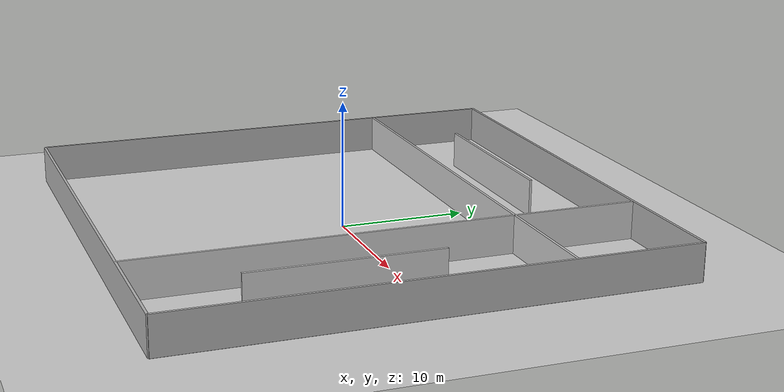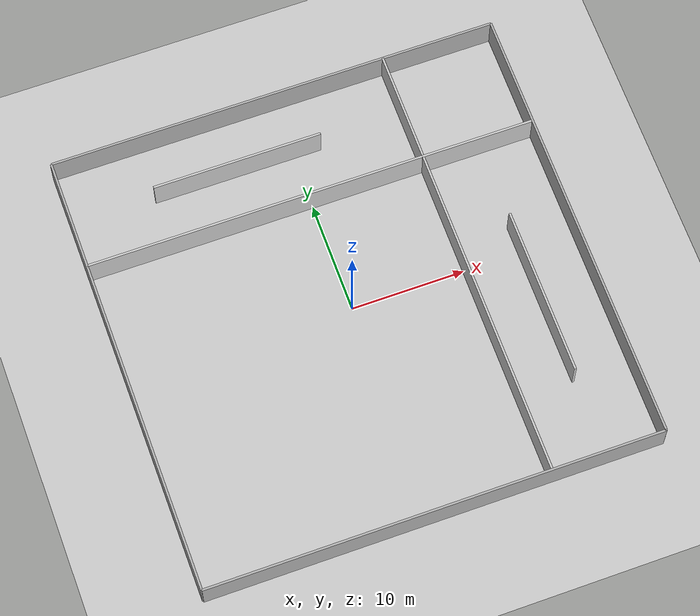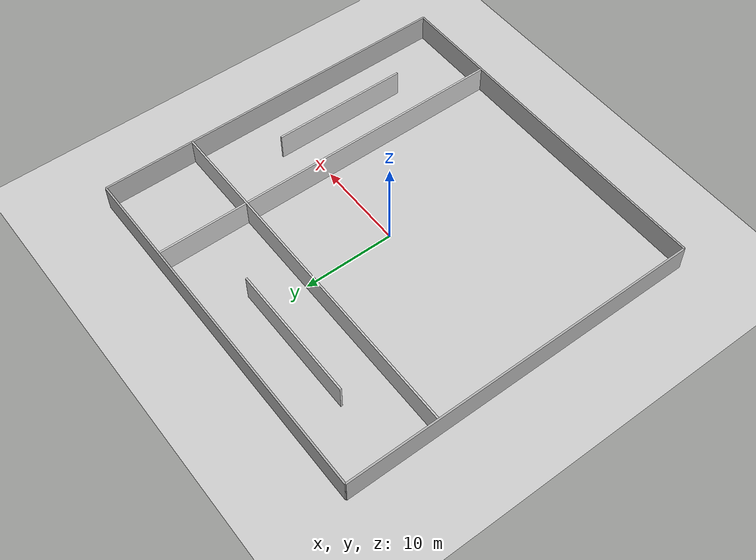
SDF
<?xml version="1.0" encoding="UTF-8"?>
<sdf version="1.9">
  <world name="home">
    <physics type="ode">
      <max_step_size>0.004</max_step_size>
      <real_time_factor>1.0</real_time_factor>
      <real_time_update_rate>250</real_time_update_rate>
    </physics>
    <plugin name="gz::sim::systems::Physics" filename="gz-sim-physics-system"/>
    <plugin name="gz::sim::systems::UserCommands" filename="gz-sim-user-commands-system"/>
    <plugin name="gz::sim::systems::SceneBroadcaster" filename="gz-sim-scene-broadcaster-system"/>
    <plugin name="gz::sim::systems::Contact" filename="gz-sim-contact-system"/>
    <plugin name="gz::sim::systems::Imu" filename="gz-sim-imu-system"/>
    <plugin name="gz::sim::systems::AirPressure" filename="gz-sim-air-pressure-system"/>
    <plugin name="gz::sim::systems::ApplyLinkWrench" filename="gz-sim-apply-link-wrench-system"/>
    <plugin name="gz::sim::systems::Sensors" filename="gz-sim-sensors-system">
      <render_engine>ogre2</render_engine>
    </plugin>
    <gui fullscreen="false">
      <!-- 3D scene -->
      <plugin filename="MinimalScene" name="3D View">
        <gz-gui>
          <title>3D View</title>
          <property type="bool" key="showTitleBar">false</property>
          <property type="string" key="state">docked</property>
        </gz-gui>
        <engine>ogre2</engine>
        <scene>scene</scene>
        <ambient_light>0.4 0.4 0.4</ambient_light>
        <background_color>0.8 0.8 0.8</background_color>
        <camera_pose>-6 0 6 0 0.5 0</camera_pose>
        <camera_clip>
          <near>0.25</near>
          <far>25000</far>
        </camera_clip>
      </plugin>
      <!-- Plugins that add functionality to the scene -->
      <plugin filename="EntityContextMenuPlugin" name="Entity context menu">
        <gz-gui>
          <property key="state" type="string">floating</property>
          <property key="width" type="double">5</property>
          <property key="height" type="double">5</property>
          <property key="showTitleBar" type="bool">false</property>
        </gz-gui>
      </plugin>
      <plugin filename="GzSceneManager" name="Scene Manager">
        <gz-gui>
          <property key="resizable" type="bool">false</property>
          <property key="width" type="double">5</property>
          <property key="height" type="double">5</property>
          <property key="state" type="string">floating</property>
          <property key="showTitleBar" type="bool">false</property>
        </gz-gui>
      </plugin>
      <plugin filename="InteractiveViewControl" name="Interactive view control">
        <gz-gui>
          <property key="resizable" type="bool">false</property>
          <property key="width" type="double">5</property>
          <property key="height" type="double">5</property>
          <property key="state" type="string">floating</property>
          <property key="showTitleBar" type="bool">false</property>
        </gz-gui>
      </plugin>
      <plugin filename="CameraTracking" name="Camera Tracking">
        <gz-gui>
          <property key="resizable" type="bool">false</property>
          <property key="width" type="double">5</property>
          <property key="height" type="double">5</property>
          <property key="state" type="string">floating</property>
          <property key="showTitleBar" type="bool">false</property>
        </gz-gui>
      </plugin>
      <plugin filename="MarkerManager" name="Marker manager">
        <gz-gui>
          <property key="resizable" type="bool">false</property>
          <property key="width" type="double">5</property>
          <property key="height" type="double">5</property>
          <property key="state" type="string">floating</property>
          <property key="showTitleBar" type="bool">false</property>
        </gz-gui>
      </plugin>
      <plugin filename="SelectEntities" name="Select Entities">
        <gz-gui>
          <anchors target="Select entities">
            <line own="right" target="right"/>
            <line own="top" target="top"/>
          </anchors>
          <property key="resizable" type="bool">false</property>
          <property key="width" type="double">5</property>
          <property key="height" type="double">5</property>
          <property key="state" type="string">floating</property>
          <property key="showTitleBar" type="bool">false</property>
        </gz-gui>
      </plugin>
      <plugin filename="VisualizationCapabilities" name="Visualization Capabilities">
        <gz-gui>
          <property key="resizable" type="bool">false</property>
          <property key="width" type="double">5</property>
          <property key="height" type="double">5</property>
          <property key="state" type="string">floating</property>
          <property key="showTitleBar" type="bool">false</property>
        </gz-gui>
      </plugin>
      <plugin filename="Spawn" name="Spawn Entities">
        <gz-gui>
          <anchors target="Select entities">
            <line own="right" target="right"/>
            <line own="top" target="top"/>
          </anchors>
          <property key="resizable" type="bool">false</property>
          <property key="width" type="double">5</property>
          <property key="height" type="double">5</property>
          <property key="state" type="string">floating</property>
          <property key="showTitleBar" type="bool">false</property>
        </gz-gui>
      </plugin>
      <plugin name="World control" filename="WorldControl">
        <gz-gui>
          <title>World control</title>
          <property type="bool" key="showTitleBar">0</property>
          <property type="bool" key="resizable">0</property>
          <property type="double" key="height">72</property>
          <property type="double" key="width">121</property>
          <property type="double" key="z">1</property>
          <property type="string" key="state">floating</property>
          <anchors target="3D View">
            <line own="left" target="left"/>
            <line own="bottom" target="bottom"/>
          </anchors>
        </gz-gui>
        <play_pause>1</play_pause>
        <step>1</step>
        <start_paused>1</start_paused>
      </plugin>
      <plugin name="World stats" filename="WorldStats">
        <gz-gui>
          <title>World stats</title>
          <property type="bool" key="showTitleBar">0</property>
          <property type="bool" key="resizable">0</property>
          <property type="double" key="height">110</property>
          <property type="double" key="width">290</property>
          <property type="double" key="z">1</property>
          <property type="string" key="state">floating</property>
          <anchors target="3D View">
            <line own="right" target="right"/>
            <line own="bottom" target="bottom"/>
          </anchors>
        </gz-gui>
        <sim_time>1</sim_time>
        <real_time>1</real_time>
        <real_time_factor>1</real_time_factor>
        <iterations>1</iterations>
      </plugin>
      <plugin name="Entity tree" filename="EntityTree"/>
    </gui>
    <gravity>0 0 -9.8</gravity>
    <magnetic_field>6e-06 2.3e-05 -4.2e-05</magnetic_field>
    <atmosphere type="adiabatic"/>
    <scene>
      <grid>false</grid>
      <ambient>0.4 0.4 0.4 1</ambient>
      <background>0.7 0.7 0.7 1</background>
      <shadows>true</shadows>
    </scene>
    <model name="ground_plane">
      <static>true</static>
      <link name="link">
        <collision name="collision">
          <geometry>
            <plane>
              <normal>0 0 1</normal>
              <size>1 1</size>
            </plane>
          </geometry>
          <surface>
            <friction>
              <ode/>
            </friction>
            <bounce/>
            <contact/>
          </surface>
        </collision>
        <visual name="visual">
          <geometry>
            <plane>
              <normal>0 0 1</normal>
              <size>100 100</size>
            </plane>
          </geometry>
          <material>
            <ambient>0.8 0.8 0.8 1</ambient>
            <diffuse>0.8 0.8 0.8 1</diffuse>
            <specular>0.8 0.8 0.8 1</specular>
          </material>
        </visual>
        <pose>0 0 0 0 -0 0</pose>
        <inertial>
          <pose>0 0 0 0 -0 0</pose>
          <mass>1</mass>
          <inertia>
            <ixx>1</ixx>
            <ixy>0</ixy>
            <ixz>0</ixz>
            <iyy>1</iyy>
            <iyz>0</iyz>
            <izz>1</izz>
          </inertia>
        </inertial>
        <enable_wind>false</enable_wind>
      </link>
      <pose>0 0 0 0 -0 0</pose>
      <self_collide>false</self_collide>
    </model>
    <light name="sunUTC" type="directional">
      <pose>0 0 500 0 -0 0</pose>
      <cast_shadows>true</cast_shadows>
      <intensity>1</intensity>
      <direction>0.001 0.625 -0.78</direction>
      <diffuse>0.904 0.904 0.904 1</diffuse>
      <specular>0.271 0.271 0.271 1</specular>
      <attenuation>
        <range>2000</range>
        <linear>0</linear>
        <constant>1</constant>
        <quadratic>0</quadratic>
      </attenuation>
      <spot>
        <inner_angle>0</inner_angle>
        <outer_angle>0</outer_angle>
        <falloff>0</falloff>
      </spot>
    </light>
        <!-- Floor -->
    <model name="floor">
      <static>true</static>
      <link name="floor_link">
        <collision name="collision">
          <geometry><box><size>40 40 0.1</size></box></geometry>
        </collision>
        <visual name="visual">
          <geometry><box><size>40 40 0.1</size></box></geometry>
          <material>
            <ambient>0.8 0.8 0.8 1</ambient>
            <diffuse>0.8 0.8 0.8 1</diffuse>
          </material>
        </visual>
      </link>
      <pose>0 0 -0.05 0 0 0</pose>
    </model>

    <!-- Outer boundary walls -->
    <model name="outer_wall_left">
      <static>true</static>
      <link name="wall_link">
        <collision name="collision"><geometry><box><size>0.2 40 3</size></box></geometry></collision>
        <visual name="visual">
          <geometry><box><size>0.2 40 3</size></box></geometry>
          <material><ambient>0.7 0.7 0.7 1</ambient><diffuse>0.7 0.7 0.7 1</diffuse></material>
        </visual>
      </link>
      <pose>-20 0 1.5 0 0 0</pose>
    </model>

    <model name="outer_wall_right">
      <static>true</static>
      <link name="wall_link">
        <collision name="collision"><geometry><box><size>0.2 40 3</size></box></geometry></collision>
        <visual name="visual">
          <geometry><box><size>0.2 40 3</size></box></geometry>
          <material><ambient>0.7 0.7 0.7 1</ambient><diffuse>0.7 0.7 0.7 1</diffuse></material>
        </visual>
      </link>
      <pose>20 0 1.5 0 0 0</pose>
    </model>

    <model name="outer_wall_front">
      <static>true</static>
      <link name="wall_link">
        <collision name="collision"><geometry><box><size>40 0.2 3</size></box></geometry></collision>
        <visual name="visual">
          <geometry><box><size>40 0.2 3</size></box></geometry>
          <material><ambient>0.7 0.7 0.7 1</ambient><diffuse>0.7 0.7 0.7 1</diffuse></material>
        </visual>
      </link>
      <pose>0 20 1.5 0 0 0</pose>
    </model>

    <model name="outer_wall_back">
      <static>true</static>
      <link name="wall_link">
        <collision name="collision"><geometry><box><size>40 0.2 3</size></box></geometry></collision>
        <visual name="visual">
          <geometry><box><size>40 0.2 3</size></box></geometry>
          <material><ambient>0.7 0.7 0.7 1</ambient><diffuse>0.7 0.7 0.7 1</diffuse></material>
        </visual>
      </link>
      <pose>0 -20 1.5 0 0 0</pose>
    </model>

    <!-- Inner walls to form rooms -->
    <!-- Vertical divider -->
    <model name="inner_wall_vertical">
      <static>true</static>
      <link name="wall_link">
        <collision name="collision"><geometry><box><size>0.2 40 3</size></box></geometry></collision>
        <visual name="visual">
          <geometry><box><size>0.2 40 3</size></box></geometry>
          <material><ambient>0.8 0.8 0.8 1</ambient><diffuse>0.8 0.8 0.8 1</diffuse></material>
        </visual>
      </link>
      <!-- Positioned to leave a passage at y=0 -->
      <pose>10 0 1.5 0 0 0</pose>
    </model>

    <!-- Horizontal divider -->
    <model name="inner_wall_horizontal">
      <static>true</static>
      <link name="wall_link">
        <collision name="collision"><geometry><box><size>40 0.2 3</size></box></geometry></collision>
        <visual name="visual">
          <geometry><box><size>40 0.2 3</size></box></geometry>
          <material><ambient>0.8 0.8 0.8 1</ambient><diffuse>0.8 0.8 0.8 1</diffuse></material>
        </visual>
      </link>
      <!-- Positioned to leave a passage at x=0 -->
      <pose>0 10 1.5 0 0 0</pose>
    </model>

    <!-- Additional short walls to create 4–5 rooms with passages -->
    <model name="inner_wall_short1">
      <static>true</static>
      <link name="wall_link">
        <collision name="collision"><geometry><box><size>0.2 15 3</size></box></geometry></collision>
        <visual name="visual">
          <geometry><box><size>0.2 15 3</size></box></geometry>
          <material><ambient>0.8 0.8 0.8 1</ambient><diffuse>0.8 0.8 0.8 1</diffuse></material>
        </visual>
      </link>
      <pose>15 -5 1.5 0 0 0</pose>
    </model>

    <model name="inner_wall_short2">
      <static>true</static>
      <link name="wall_link">
        <collision name="collision"><geometry><box><size>15 0.2 3</size></box></geometry></collision>
        <visual name="visual">
          <geometry><box><size>15 0.2 3</size></box></geometry>
          <material><ambient>0.8 0.8 0.8 1</ambient><diffuse>0.8 0.8 0.8 1</diffuse></material>
        </visual>
      </link>
      <pose>-5 15 1.5 0 0 0</pose>
    </model>
  </world>
</sdf>
